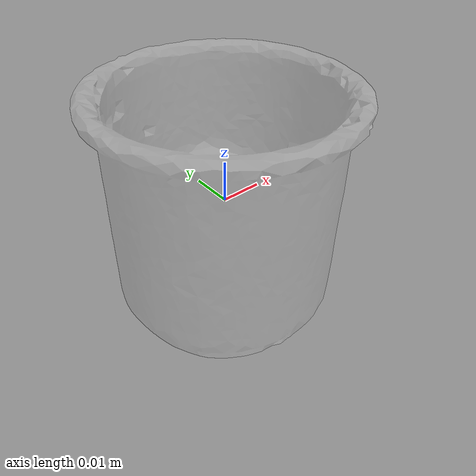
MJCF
<mujoco model="e_cups-visual">
  <asset>
    <mesh name="e_cups_mesh" file="$ADDRESS/google_16k/nontextured.stl" scale="0.8 0.8 0.8"/>
  </asset>
  <worldbody>
    <body>
      <body name="object">
        <geom name="e_cups" pos="0 0 0" mesh="e_cups_mesh" type="mesh" rgba="0.8 0.8 0.8 0.3" conaffinity="0" contype="0" mass="4.532431815174534e-05" friction="0.95 0.3 0.1" group="1" condim="4"/>
      </body>
      <site rgba="0 0 0 0" size="0.005" pos="0 0 -0.045" name="bottom_site"/>
      <site rgba="0 0 0 0" size="0.005" pos="0 0 0.03" name="top_site"/>
      <site rgba="0 0 0 0" size="0.005" pos="0.096 0.096 0" name="horizontal_radius_site"/>
    </body>
  </worldbody>
</mujoco>
